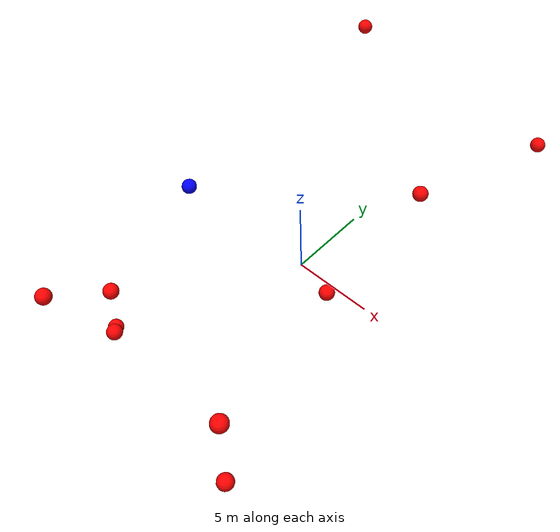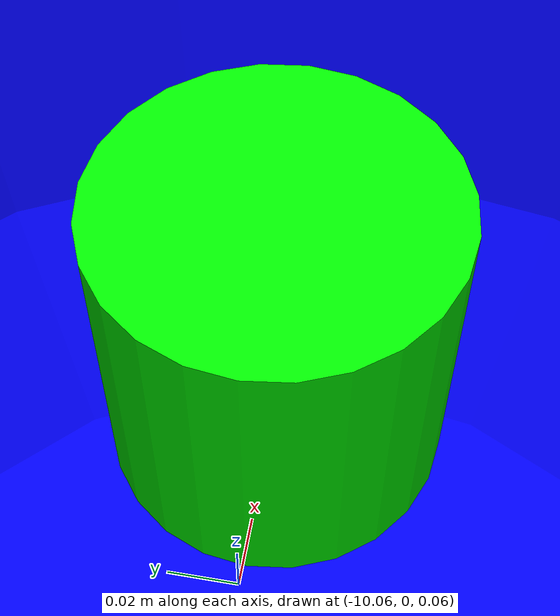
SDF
<?xml version="1.0" ?>
<sdf version="1.8">
    <world name="3d_world">
        <physics name="1ms" type="ode">
            <max_step_size>0.001</max_step_size>
            <real_time_factor>1.0</real_time_factor>
            <real_time_update_rate>1000.0</real_time_update_rate>
        </physics>
        <gravity>0 0 0</gravity>

        <plugin
            filename="gz-sim-physics-system"
            name="gz::sim::v8::systems::Physics">
        </plugin>
        <plugin
            filename="libignition-gazebo-user-commands-system.so"
            name="ignition::gazebo::systems::UserCommands">
        </plugin>
        <plugin
            filename="gz-sim-scene-broadcaster-system"
            name="gz::sim::systems::SceneBroadcaster">
        </plugin>
        <plugin
            filename="gz-sim-sensors-system"
            name="gz::sim::systems::Sensors">
            <render_engine>ogre2</render_engine>
        </plugin>

        <light type="directional" name="sun">
            <cast_shadows>true</cast_shadows>
            <pose>0 0 10 0 0 0</pose>
            <diffuse>0.8 0.8 0.8 1</diffuse>
            <specular>0.2 0.2 0.2 1</specular>
            <attenuation>
                <range>1000</range>
                <constant>0.9</constant>
                <linear>0.01</linear>
                <quadratic>0.001</quadratic>
            </attenuation>
            <direction>-0.5 0.1 -0.9</direction>
        </light>

        <!-- AGENTE -->
        <model name='agente' canonical_link='chassis'>
            <pose relative_to='world'>-10.0 0 0.0 0 0 0</pose>
            <link name='chassis'>
                <pose relative_to='__model__'>0.0 0 0.0 0 0 0</pose>
                <inertial>
                    <mass>1.14395</mass>
                    <inertia>
                        <ixx>0.095329</ixx>
                        <ixy>0</ixy>
                        <ixz>0</ixz>
                        <iyy>0.381317</iyy>
                        <iyz>0</iyz>
                        <izz>0.476646</izz>
                    </inertia>
                </inertial>
                <visual name='visual'>
                    <geometry>
                        <sphere>
                            <radius>0.5</radius>
                        </sphere>
                    </geometry>
                    <material>
                        <ambient>0.0 0.0 1.0 1</ambient>
                        <diffuse>0.0 0.0 1.0 1</diffuse>
                        <specular>0.0 0.0 1.0 1</specular>
                    </material>
                </visual>
                <collision name='collision'>
                    <geometry>
                        <sphere>
                            <radius>0.5</radius>
                        </sphere>
                    </geometry>
                </collision>
                <enable_gravity>false</enable_gravity>
            </link>

            <link name='lidar_link'>
                <pose relative_to='chassis'>0.0 0 0.1 0 0 0</pose>
                <inertial>
                    <mass>0.1</mass>
                    <inertia>
                        <ixx>0.000166667</ixx>
                        <iyy>0.000166667</iyy>
                        <izz>0.000166667</izz>
                    </inertia>
                </inertial>
                <collision name='collision'>
                    <geometry>
                        <cylinder>
                            <radius>0.05</radius>
                            <length>0.1</length>
                        </cylinder>
                    </geometry>
                </collision>
                <visual name='visual'>
                    <geometry>
                        <cylinder>
                            <radius>0.05</radius>
                            <length>0.1</length>
                        </cylinder>
                    </geometry>
                    <material>
                        <ambient>0.0 1.0 0.0 1</ambient>
                        <diffuse>0.0 1.0 0.0 1</diffuse>
                        <specular>0.0 1.0 0.0 1</specular>
                    </material>
                </visual>
                <sensor name="lidar" type="gpu_lidar">
                    <topic>scan</topic>
                    <update_rate>10</update_rate>
                    <lidar>
                        <scan>
                            <horizontal>
                                <samples>5000</samples>
                                <resolution>1</resolution>
                                <min_angle>-3.14159</min_angle>
                                <max_angle>3.14159</max_angle>
                            </horizontal>
                        </scan>
                        <range>
                            <min>0.1</min>
                            <max>10.0</max>
                            <resolution>0.01</resolution>
                        </range>
                    </lidar>
                    <visualize>true</visualize>
                    <always_on>true</always_on>
                    <update_rate>10</update_rate>
                    <pose_frame>lidar</pose_frame>
                </sensor>
                <enable_gravity>false</enable_gravity>
            </link>

            <joint name="lidar_joint" type="fixed">
                <parent>chassis</parent>
                <child>lidar_link</child>
            </joint>

            <plugin
                filename="ignition-gazebo-joint-state-publisher-system"
                name="ignition::gazebo::systems::JointStatePublisher">
            </plugin>
            <plugin
                filename="ignition-gazebo-odometry-publisher-system"
                name="ignition::gazebo::systems::OdometryPublisher">
                <dimensions>3</dimensions>
            </plugin>
            <plugin
                filename="ignition-gazebo-velocity-control-system"
                name="ignition::gazebo::systems::VelocityControl">
                <initial_linear>0.0 0 0</initial_linear>
                <initial_angular>0 0 0.0</initial_angular>
            </plugin>
            <plugin
                filename="libignition-gazebo-pose-publisher-system.so"
                name="ignition::gazebo::systems::PosePublisher">
                <topic>/agente/pose</topic>
                <frame_id>agente</frame_id>
                <update_rate>30</update_rate>
            </plugin>
        </model>

        <!-- OBSTACLE 1 -->
        <model name='obstacle_1' canonical_link='obstacle'>
            <static>false</static>
            <pose relative_to='world'>-9.66 17.68 3.21 0 0 0</pose>
            <link name='obstacle'>
                <pose relative_to='__model__'>0.0 0 0.0 0 0 0</pose>
                <visual name='visual'>
                    <geometry>
                        <sphere>
                            <radius>0.50</radius>
                        </sphere>
                    </geometry>
                    <material>
                        <ambient>1.0 0.0 0.0 1</ambient>
                        <diffuse>1.0 0.0 0.0 1</diffuse>
                        <specular>1.0 0.0 0.0 1</specular>
                    </material>
                </visual>
                <collision name='collision'>
                    <geometry>
                        <sphere>
                            <radius>0.50</radius>
                        </sphere>
                    </geometry>
                </collision>
                <enable_gravity>false</enable_gravity>
            </link>

            <plugin
                filename="ignition-gazebo-velocity-control-system"
                name="ignition::gazebo::systems::VelocityControl">
                <initial_linear>0.57 -1.89 -0.34</initial_linear>
                <initial_angular>0 0 0</initial_angular>
            </plugin>

            <plugin
                filename="ignition-gazebo-odometry-publisher-system"
                name="ignition::gazebo::systems::OdometryPublisher">
                <dimensions>3</dimensions>
            </plugin>
        </model>

        <!-- OBSTACLE 2 -->
        <model name='obstacle_2' canonical_link='obstacle'>
            <static>false</static>
            <pose relative_to='world'>6.09 -12.49 4.71 0 0 0</pose>
            <link name='obstacle'>
                <pose relative_to='__model__'>0.0 0 0.0 0 0 0</pose>
                <visual name='visual'>
                    <geometry>
                        <sphere>
                            <radius>0.50</radius>
                        </sphere>
                    </geometry>
                    <material>
                        <ambient>1.0 0.0 0.0 1</ambient>
                        <diffuse>1.0 0.0 0.0 1</diffuse>
                        <specular>1.0 0.0 0.0 1</specular>
                    </material>
                </visual>
                <collision name='collision'>
                    <geometry>
                        <sphere>
                            <radius>0.50</radius>
                        </sphere>
                    </geometry>
                </collision>
                <enable_gravity>false</enable_gravity>
            </link>

            <plugin
                filename="ignition-gazebo-velocity-control-system"
                name="ignition::gazebo::systems::VelocityControl">
                <initial_linear>-0.88 1.68 -0.63</initial_linear>
                <initial_angular>0 0 0</initial_angular>
            </plugin>

            <plugin
                filename="ignition-gazebo-odometry-publisher-system"
                name="ignition::gazebo::systems::OdometryPublisher">
                <dimensions>3</dimensions>
            </plugin>
        </model>

        <!-- OBSTACLE 3 -->
        <model name='obstacle_3' canonical_link='obstacle'>
            <static>false</static>
            <pose relative_to='world'>3.08 7.61 2.47 0 0 0</pose>
            <link name='obstacle'>
                <pose relative_to='__model__'>0.0 0 0.0 0 0 0</pose>
                <visual name='visual'>
                    <geometry>
                        <sphere>
                            <radius>0.50</radius>
                        </sphere>
                    </geometry>
                    <material>
                        <ambient>1.0 0.0 0.0 1</ambient>
                        <diffuse>1.0 0.0 0.0 1</diffuse>
                        <specular>1.0 0.0 0.0 1</specular>
                    </material>
                </visual>
                <collision name='collision'>
                    <geometry>
                        <sphere>
                            <radius>0.50</radius>
                        </sphere>
                    </geometry>
                </collision>
                <enable_gravity>false</enable_gravity>
            </link>

            <plugin
                filename="ignition-gazebo-velocity-control-system"
                name="ignition::gazebo::systems::VelocityControl">
                <initial_linear>-1.00 -1.65 -0.53</initial_linear>
                <initial_angular>0 0 0</initial_angular>
            </plugin>

            <plugin
                filename="ignition-gazebo-odometry-publisher-system"
                name="ignition::gazebo::systems::OdometryPublisher">
                <dimensions>3</dimensions>
            </plugin>
        </model>

        <!-- OBSTACLE 4 -->
        <model name='obstacle_4' canonical_link='obstacle'>
            <static>false</static>
            <pose relative_to='world'>-7.25 -9.01 -0.09 0 0 0</pose>
            <link name='obstacle'>
                <pose relative_to='__model__'>0.0 0 0.0 0 0 0</pose>
                <visual name='visual'>
                    <geometry>
                        <sphere>
                            <radius>0.50</radius>
                        </sphere>
                    </geometry>
                    <material>
                        <ambient>1.0 0.0 0.0 1</ambient>
                        <diffuse>1.0 0.0 0.0 1</diffuse>
                        <specular>1.0 0.0 0.0 1</specular>
                    </material>
                </visual>
                <collision name='collision'>
                    <geometry>
                        <sphere>
                            <radius>0.50</radius>
                        </sphere>
                    </geometry>
                </collision>
                <enable_gravity>false</enable_gravity>
            </link>

            <plugin
                filename="ignition-gazebo-velocity-control-system"
                name="ignition::gazebo::systems::VelocityControl">
                <initial_linear>0.67 1.89 0.02</initial_linear>
                <initial_angular>0 0 0</initial_angular>
            </plugin>

            <plugin
                filename="ignition-gazebo-odometry-publisher-system"
                name="ignition::gazebo::systems::OdometryPublisher">
                <dimensions>3</dimensions>
            </plugin>
        </model>

        <!-- OBSTACLE 5 -->
        <model name='obstacle_5' canonical_link='obstacle'>
            <static>false</static>
            <pose relative_to='world'>6.30 -12.85 -0.67 0 0 0</pose>
            <link name='obstacle'>
                <pose relative_to='__model__'>0.0 0 0.0 0 0 0</pose>
                <visual name='visual'>
                    <geometry>
                        <sphere>
                            <radius>0.50</radius>
                        </sphere>
                    </geometry>
                    <material>
                        <ambient>1.0 0.0 0.0 1</ambient>
                        <diffuse>1.0 0.0 0.0 1</diffuse>
                        <specular>1.0 0.0 0.0 1</specular>
                    </material>
                </visual>
                <collision name='collision'>
                    <geometry>
                        <sphere>
                            <radius>0.50</radius>
                        </sphere>
                    </geometry>
                </collision>
                <enable_gravity>false</enable_gravity>
            </link>

            <plugin
                filename="ignition-gazebo-velocity-control-system"
                name="ignition::gazebo::systems::VelocityControl">
                <initial_linear>-1.29 1.53 0.08</initial_linear>
                <initial_angular>0 0 0</initial_angular>
            </plugin>

            <plugin
                filename="ignition-gazebo-odometry-publisher-system"
                name="ignition::gazebo::systems::OdometryPublisher">
                <dimensions>3</dimensions>
            </plugin>
        </model>

        <!-- OBSTACLE 6 -->
        <model name='obstacle_6' canonical_link='obstacle'>
            <static>false</static>
            <pose relative_to='world'>-8.00 -12.73 2.45 0 0 0</pose>
            <link name='obstacle'>
                <pose relative_to='__model__'>0.0 0 0.0 0 0 0</pose>
                <visual name='visual'>
                    <geometry>
                        <sphere>
                            <radius>0.50</radius>
                        </sphere>
                    </geometry>
                    <material>
                        <ambient>1.0 0.0 0.0 1</ambient>
                        <diffuse>1.0 0.0 0.0 1</diffuse>
                        <specular>1.0 0.0 0.0 1</specular>
                    </material>
                </visual>
                <collision name='collision'>
                    <geometry>
                        <sphere>
                            <radius>0.50</radius>
                        </sphere>
                    </geometry>
                </collision>
                <enable_gravity>false</enable_gravity>
            </link>

            <plugin
                filename="ignition-gazebo-velocity-control-system"
                name="ignition::gazebo::systems::VelocityControl">
                <initial_linear>1.10 1.64 -0.32</initial_linear>
                <initial_angular>0 0 0</initial_angular>
            </plugin>

            <plugin
                filename="ignition-gazebo-odometry-publisher-system"
                name="ignition::gazebo::systems::OdometryPublisher">
                <dimensions>3</dimensions>
            </plugin>
        </model>

        <!-- OBSTACLE 7 -->
        <model name='obstacle_7' canonical_link='obstacle'>
            <static>false</static>
            <pose relative_to='world'>2.18 -0.13 -0.75 0 0 0</pose>
            <link name='obstacle'>
                <pose relative_to='__model__'>0.0 0 0.0 0 0 0</pose>
                <visual name='visual'>
                    <geometry>
                        <sphere>
                            <radius>0.50</radius>
                        </sphere>
                    </geometry>
                    <material>
                        <ambient>1.0 0.0 0.0 1</ambient>
                        <diffuse>1.0 0.0 0.0 1</diffuse>
                        <specular>1.0 0.0 0.0 1</specular>
                    </material>
                </visual>
                <collision name='collision'>
                    <geometry>
                        <sphere>
                            <radius>0.50</radius>
                        </sphere>
                    </geometry>
                </collision>
                <enable_gravity>false</enable_gravity>
            </link>

            <plugin
                filename="ignition-gazebo-velocity-control-system"
                name="ignition::gazebo::systems::VelocityControl">
                <initial_linear>-1.90 0.05 0.27</initial_linear>
                <initial_angular>0 0 0</initial_angular>
            </plugin>

            <plugin
                filename="ignition-gazebo-odometry-publisher-system"
                name="ignition::gazebo::systems::OdometryPublisher">
                <dimensions>3</dimensions>
            </plugin>
        </model>

        <!-- OBSTACLE 8 -->
        <model name='obstacle_8' canonical_link='obstacle'>
            <static>false</static>
            <pose relative_to='world'>-5.92 -10.21 -1.79 0 0 0</pose>
            <link name='obstacle'>
                <pose relative_to='__model__'>0.0 0 0.0 0 0 0</pose>
                <visual name='visual'>
                    <geometry>
                        <sphere>
                            <radius>0.50</radius>
                        </sphere>
                    </geometry>
                    <material>
                        <ambient>1.0 0.0 0.0 1</ambient>
                        <diffuse>1.0 0.0 0.0 1</diffuse>
                        <specular>1.0 0.0 0.0 1</specular>
                    </material>
                </visual>
                <collision name='collision'>
                    <geometry>
                        <sphere>
                            <radius>0.50</radius>
                        </sphere>
                    </geometry>
                </collision>
                <enable_gravity>false</enable_gravity>
            </link>

            <plugin
                filename="ignition-gazebo-velocity-control-system"
                name="ignition::gazebo::systems::VelocityControl">
                <initial_linear>1.52 1.28 0.22</initial_linear>
                <initial_angular>0 0 0</initial_angular>
            </plugin>

            <plugin
                filename="ignition-gazebo-odometry-publisher-system"
                name="ignition::gazebo::systems::OdometryPublisher">
                <dimensions>3</dimensions>
            </plugin>
        </model>

        <!-- OBSTACLE 9 -->
        <model name='obstacle_9' canonical_link='obstacle'>
            <static>false</static>
            <pose relative_to='world'>-7.38 -9.25 -3.68 0 0 0</pose>
            <link name='obstacle'>
                <pose relative_to='__model__'>0.0 0 0.0 0 0 0</pose>
                <visual name='visual'>
                    <geometry>
                        <sphere>
                            <radius>0.50</radius>
                        </sphere>
                    </geometry>
                    <material>
                        <ambient>1.0 0.0 0.0 1</ambient>
                        <diffuse>1.0 0.0 0.0 1</diffuse>
                        <specular>1.0 0.0 0.0 1</specular>
                    </material>
                </visual>
                <collision name='collision'>
                    <geometry>
                        <sphere>
                            <radius>0.50</radius>
                        </sphere>
                    </geometry>
                </collision>
                <enable_gravity>false</enable_gravity>
            </link>

            <plugin
                filename="ignition-gazebo-velocity-control-system"
                name="ignition::gazebo::systems::VelocityControl">
                <initial_linear>1.58 1.14 0.46</initial_linear>
                <initial_angular>0 0 0</initial_angular>
            </plugin>

            <plugin
                filename="ignition-gazebo-odometry-publisher-system"
                name="ignition::gazebo::systems::OdometryPublisher">
                <dimensions>3</dimensions>
            </plugin>
        </model>

        <!-- OBSTACLE 10 -->
        <model name='obstacle_10' canonical_link='obstacle'>
            <static>false</static>
            <pose relative_to='world'>5.32 18.14 0.50 0 0 0</pose>
            <link name='obstacle'>
                <pose relative_to='__model__'>0.0 0 0.0 0 0 0</pose>
                <visual name='visual'>
                    <geometry>
                        <sphere>
                            <radius>0.50</radius>
                        </sphere>
                    </geometry>
                    <material>
                        <ambient>1.0 0.0 0.0 1</ambient>
                        <diffuse>1.0 0.0 0.0 1</diffuse>
                        <specular>1.0 0.0 0.0 1</specular>
                    </material>
                </visual>
                <collision name='collision'>
                    <geometry>
                        <sphere>
                            <radius>0.50</radius>
                        </sphere>
                    </geometry>
                </collision>
                <enable_gravity>false</enable_gravity>
            </link>

            <plugin
                filename="ignition-gazebo-velocity-control-system"
                name="ignition::gazebo::systems::VelocityControl">
                <initial_linear>-0.50 -1.94 -0.05</initial_linear>
                <initial_angular>0 0 0</initial_angular>
            </plugin>

            <plugin
                filename="ignition-gazebo-odometry-publisher-system"
                name="ignition::gazebo::systems::OdometryPublisher">
                <dimensions>3</dimensions>
            </plugin>
        </model>

    </world>
</sdf>
